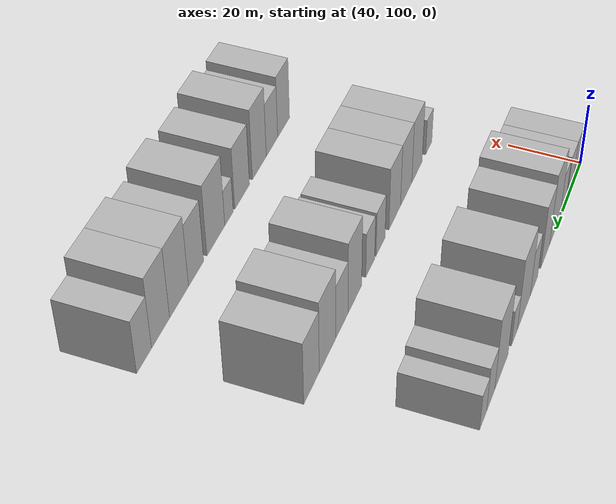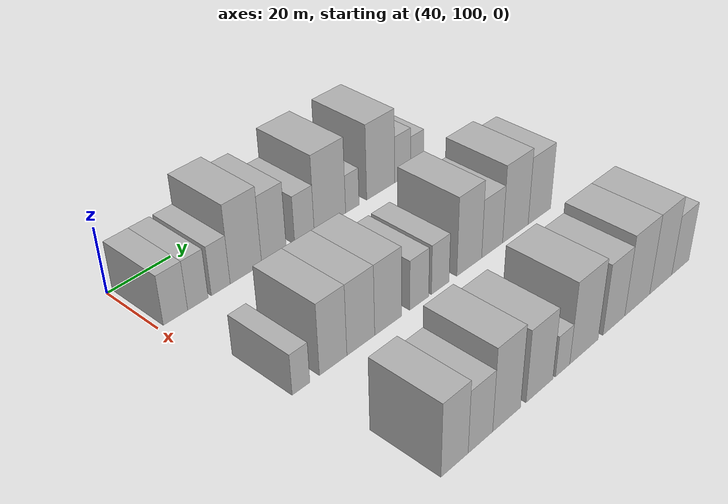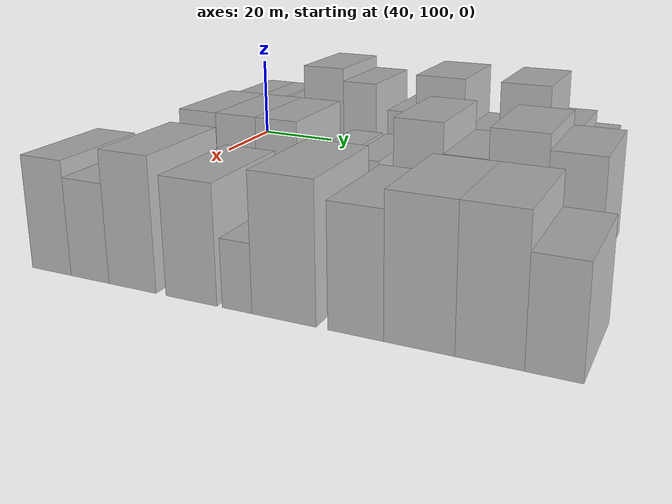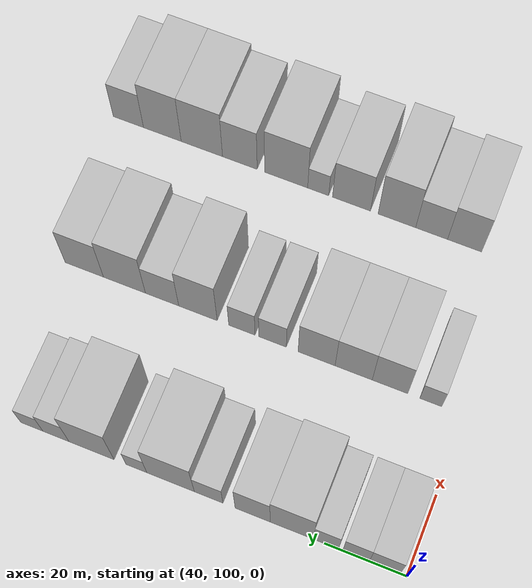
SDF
<sdf version="1.6">
 <world name="default">
  <model name="building_54">
   <static>1</static>
   <pose>50.0000 105.3752 0 0.000000 0.000000 0.000000</pose>
   <link name="link">
    <pose>0 0 7.50 0 0 0</pose>
    <collision name="collision"><geometry><box><size>20.0000 7.4803 15.0000</size></box></geometry></collision>
    <visual name="visual">
     <cast_shadows>0</cast_shadows>
     <geometry><box><size>20.0000 7.4803 15.0000</size></box></geometry>
     <material>
      <script>
       <uri>model://HANNAS_wall/materials/scripts</uri>
       <uri>model://HANNAS_wall/materials/textures</uri>
       <name>vrc/HANNAS_wall</name>
      </script>
     </material>
    </visual>
   </link>
  </model>
  <model name="building_55">
   <static>1</static>
   <pose>50.0000 112.3379 0 0.000000 0.000000 0.000000</pose>
   <link name="link">
    <pose>0 0 7.50 0 0 0</pose>
    <collision name="collision"><geometry><box><size>20.0000 6.4452 15.0000</size></box></geometry></collision>
    <visual name="visual">
     <cast_shadows>0</cast_shadows>
     <geometry><box><size>20.0000 6.4452 15.0000</size></box></geometry>
     <material>
      <script>
       <uri>model://HANNAS_wall/materials/scripts</uri>
       <uri>model://HANNAS_wall/materials/textures</uri>
       <name>vrc/HANNAS_wall</name>
      </script>
     </material>
    </visual>
   </link>
  </model>
  <model name="building_56">
   <static>1</static>
   <pose>50.0000 119.6325 0 0.000000 0.000000 0.000000</pose>
   <link name="link">
    <pose>0 0 7.50 0 0 0</pose>
    <collision name="collision"><geometry><box><size>20.0000 6.1440 15.0000</size></box></geometry></collision>
    <visual name="visual">
     <cast_shadows>0</cast_shadows>
     <geometry><box><size>20.0000 6.1440 15.0000</size></box></geometry>
     <material>
      <script>
       <uri>model://HANNAS_wall/materials/scripts</uri>
       <uri>model://HANNAS_wall/materials/textures</uri>
       <name>vrc/HANNAS_wall</name>
      </script>
     </material>
    </visual>
   </link>
  </model>
  <model name="building_57">
   <static>1</static>
   <pose>50.0000 128.0010 0 0.000000 0.000000 0.000000</pose>
   <link name="link">
    <pose>0 0 12.00 0 0 0</pose>
    <collision name="collision"><geometry><box><size>20.0000 10.5930 24.0000</size></box></geometry></collision>
    <visual name="visual">
     <cast_shadows>0</cast_shadows>
     <geometry><box><size>20.0000 10.5930 24.0000</size></box></geometry>
     <material>
      <script>
       <uri>model://HANNAS_wall/materials/scripts</uri>
       <uri>model://HANNAS_wall/materials/textures</uri>
       <name>vrc/HANNAS_wall</name>
      </script>
     </material>
    </visual>
   </link>
  </model>
  <model name="building_58">
   <static>1</static>
   <pose>50.0000 137.6000 0 0.000000 0.000000 0.000000</pose>
   <link name="link">
    <pose>0 0 10.50 0 0 0</pose>
    <collision name="collision"><geometry><box><size>20.0000 8.6049 21.0000</size></box></geometry></collision>
    <visual name="visual">
     <cast_shadows>0</cast_shadows>
     <geometry><box><size>20.0000 8.6049 21.0000</size></box></geometry>
     <material>
      <script>
       <uri>model://HANNAS_wall/materials/scripts</uri>
       <uri>model://HANNAS_wall/materials/textures</uri>
       <name>vrc/HANNAS_wall</name>
      </script>
     </material>
    </visual>
   </link>
  </model>
  <model name="building_59">
   <static>1</static>
   <pose>50.0000 148.4644 0 0.000000 0.000000 0.000000</pose>
   <link name="link">
    <pose>0 0 7.50 0 0 0</pose>
    <collision name="collision"><geometry><box><size>20.0000 7.1239 15.0000</size></box></geometry></collision>
    <visual name="visual">
     <cast_shadows>0</cast_shadows>
     <geometry><box><size>20.0000 7.1239 15.0000</size></box></geometry>
     <material>
      <script>
       <uri>model://HANNAS_wall/materials/scripts</uri>
       <uri>model://HANNAS_wall/materials/textures</uri>
       <name>vrc/HANNAS_wall</name>
      </script>
     </material>
    </visual>
   </link>
  </model>
  <model name="building_60">
   <static>1</static>
   <pose>50.0000 157.9762 0 0.000000 0.000000 0.000000</pose>
   <link name="link">
    <pose>0 0 12.00 0 0 0</pose>
    <collision name="collision"><geometry><box><size>20.0000 11.8997 24.0000</size></box></geometry></collision>
    <visual name="visual">
     <cast_shadows>0</cast_shadows>
     <geometry><box><size>20.0000 11.8997 24.0000</size></box></geometry>
     <material>
      <script>
       <uri>model://HANNAS_wall/materials/scripts</uri>
       <uri>model://HANNAS_wall/materials/textures</uri>
       <name>vrc/HANNAS_wall</name>
      </script>
     </material>
    </visual>
   </link>
  </model>
  <model name="building_61">
   <static>1</static>
   <pose>50.0000 166.5646 0 0.000000 0.000000 0.000000</pose>
   <link name="link">
    <pose>0 0 6.00 0 0 0</pose>
    <collision name="collision"><geometry><box><size>20.0000 5.2772 12.0000</size></box></geometry></collision>
    <visual name="visual">
     <cast_shadows>0</cast_shadows>
     <geometry><box><size>20.0000 5.2772 12.0000</size></box></geometry>
     <material>
      <script>
       <uri>model://HANNAS_wall/materials/scripts</uri>
       <uri>model://HANNAS_wall/materials/textures</uri>
       <name>vrc/HANNAS_wall</name>
      </script>
     </material>
    </visual>
   </link>
  </model>
  <model name="building_62">
   <static>1</static>
   <pose>50.0000 177.9136 0 0.000000 0.000000 0.000000</pose>
   <link name="link">
    <pose>0 0 12.00 0 0 0</pose>
    <collision name="collision"><geometry><box><size>20.0000 11.4206 24.0000</size></box></geometry></collision>
    <visual name="visual">
     <cast_shadows>0</cast_shadows>
     <geometry><box><size>20.0000 11.4206 24.0000</size></box></geometry>
     <material>
      <script>
       <uri>model://HANNAS_wall/materials/scripts</uri>
       <uri>model://HANNAS_wall/materials/textures</uri>
       <name>vrc/HANNAS_wall</name>
      </script>
     </material>
    </visual>
   </link>
  </model>
  <model name="building_63">
   <static>1</static>
   <pose>50.0000 186.9711 0 0.000000 0.000000 0.000000</pose>
   <link name="link">
    <pose>0 0 7.50 0 0 0</pose>
    <collision name="collision"><geometry><box><size>20.0000 6.6943 15.0000</size></box></geometry></collision>
    <visual name="visual">
     <cast_shadows>0</cast_shadows>
     <geometry><box><size>20.0000 6.6943 15.0000</size></box></geometry>
     <material>
      <script>
       <uri>model://HANNAS_wall/materials/scripts</uri>
       <uri>model://HANNAS_wall/materials/textures</uri>
       <name>vrc/HANNAS_wall</name>
      </script>
     </material>
    </visual>
   </link>
  </model>
  <model name="building_64">
   <static>1</static>
   <pose>50.0000 193.1554 0 0.000000 0.000000 0.000000</pose>
   <link name="link">
    <pose>0 0 6.00 0 0 0</pose>
    <collision name="collision"><geometry><box><size>20.0000 5.6743 12.0000</size></box></geometry></collision>
    <visual name="visual">
     <cast_shadows>0</cast_shadows>
     <geometry><box><size>20.0000 5.6743 12.0000</size></box></geometry>
     <material>
      <script>
       <uri>model://HANNAS_wall/materials/scripts</uri>
       <uri>model://HANNAS_wall/materials/textures</uri>
       <name>vrc/HANNAS_wall</name>
      </script>
     </material>
    </visual>
   </link>
  </model>
  <model name="building_136">
   <static>1</static>
   <pose>90.0000 108.5738 0 0.000000 0.000000 0.000000</pose>
   <link name="link">
    <pose>0 0 6.00 0 0 0</pose>
    <collision name="collision"><geometry><box><size>20.0000 5.4952 12.0000</size></box></geometry></collision>
    <visual name="visual">
     <cast_shadows>0</cast_shadows>
     <geometry><box><size>20.0000 5.4952 12.0000</size></box></geometry>
     <material>
      <script>
       <uri>model://HANNAS_wall/materials/scripts</uri>
       <uri>model://HANNAS_wall/materials/textures</uri>
       <name>vrc/HANNAS_wall</name>
      </script>
     </material>
    </visual>
   </link>
  </model>
  <model name="building_137">
   <static>1</static>
   <pose>90.0000 118.7861 0 0.000000 0.000000 0.000000</pose>
   <link name="link">
    <pose>0 0 10.50 0 0 0</pose>
    <collision name="collision"><geometry><box><size>20.0000 8.9294 21.0000</size></box></geometry></collision>
    <visual name="visual">
     <cast_shadows>0</cast_shadows>
     <geometry><box><size>20.0000 8.9294 21.0000</size></box></geometry>
     <material>
      <script>
       <uri>model://HANNAS_wall/materials/scripts</uri>
       <uri>model://HANNAS_wall/materials/textures</uri>
       <name>vrc/HANNAS_wall</name>
      </script>
     </material>
    </visual>
   </link>
  </model>
  <model name="building_138">
   <static>1</static>
   <pose>90.0000 127.9511 0 0.000000 0.000000 0.000000</pose>
   <link name="link">
    <pose>0 0 10.50 0 0 0</pose>
    <collision name="collision"><geometry><box><size>20.0000 9.4006 21.0000</size></box></geometry></collision>
    <visual name="visual">
     <cast_shadows>0</cast_shadows>
     <geometry><box><size>20.0000 9.4006 21.0000</size></box></geometry>
     <material>
      <script>
       <uri>model://HANNAS_wall/materials/scripts</uri>
       <uri>model://HANNAS_wall/materials/textures</uri>
       <name>vrc/HANNAS_wall</name>
      </script>
     </material>
    </visual>
   </link>
  </model>
  <model name="building_139">
   <static>1</static>
   <pose>90.0000 137.3617 0 0.000000 0.000000 0.000000</pose>
   <link name="link">
    <pose>0 0 10.50 0 0 0</pose>
    <collision name="collision"><geometry><box><size>20.0000 9.4206 21.0000</size></box></geometry></collision>
    <visual name="visual">
     <cast_shadows>0</cast_shadows>
     <geometry><box><size>20.0000 9.4206 21.0000</size></box></geometry>
     <material>
      <script>
       <uri>model://HANNAS_wall/materials/scripts</uri>
       <uri>model://HANNAS_wall/materials/textures</uri>
       <name>vrc/HANNAS_wall</name>
      </script>
     </material>
    </visual>
   </link>
  </model>
  <model name="building_140">
   <static>1</static>
   <pose>90.0000 148.5877 0 0.000000 0.000000 0.000000</pose>
   <link name="link">
    <pose>0 0 7.50 0 0 0</pose>
    <collision name="collision"><geometry><box><size>20.0000 7.0313 15.0000</size></box></geometry></collision>
    <visual name="visual">
     <cast_shadows>0</cast_shadows>
     <geometry><box><size>20.0000 7.0313 15.0000</size></box></geometry>
     <material>
      <script>
       <uri>model://HANNAS_wall/materials/scripts</uri>
       <uri>model://HANNAS_wall/materials/textures</uri>
       <name>vrc/HANNAS_wall</name>
      </script>
     </material>
    </visual>
   </link>
  </model>
  <model name="building_141">
   <static>1</static>
   <pose>90.0000 156.4864 0 0.000000 0.000000 0.000000</pose>
   <link name="link">
    <pose>0 0 7.50 0 0 0</pose>
    <collision name="collision"><geometry><box><size>20.0000 6.7660 15.0000</size></box></geometry></collision>
    <visual name="visual">
     <cast_shadows>0</cast_shadows>
     <geometry><box><size>20.0000 6.7660 15.0000</size></box></geometry>
     <material>
      <script>
       <uri>model://HANNAS_wall/materials/scripts</uri>
       <uri>model://HANNAS_wall/materials/textures</uri>
       <name>vrc/HANNAS_wall</name>
      </script>
     </material>
    </visual>
   </link>
  </model>
  <model name="building_142">
   <static>1</static>
   <pose>90.0000 167.8605 0 0.000000 0.000000 0.000000</pose>
   <link name="link">
    <pose>0 0 12.00 0 0 0</pose>
    <collision name="collision"><geometry><box><size>20.0000 9.9822 24.0000</size></box></geometry></collision>
    <visual name="visual">
     <cast_shadows>0</cast_shadows>
     <geometry><box><size>20.0000 9.9822 24.0000</size></box></geometry>
     <material>
      <script>
       <uri>model://HANNAS_wall/materials/scripts</uri>
       <uri>model://HANNAS_wall/materials/textures</uri>
       <name>vrc/HANNAS_wall</name>
      </script>
     </material>
    </visual>
   </link>
  </model>
  <model name="building_143">
   <static>1</static>
   <pose>90.0000 177.2043 0 0.000000 0.000000 0.000000</pose>
   <link name="link">
    <pose>0 0 9.00 0 0 0</pose>
    <collision name="collision"><geometry><box><size>20.0000 8.7055 18.0000</size></box></geometry></collision>
    <visual name="visual">
     <cast_shadows>0</cast_shadows>
     <geometry><box><size>20.0000 8.7055 18.0000</size></box></geometry>
     <material>
      <script>
       <uri>model://HANNAS_wall/materials/scripts</uri>
       <uri>model://HANNAS_wall/materials/textures</uri>
       <name>vrc/HANNAS_wall</name>
      </script>
     </material>
    </visual>
   </link>
  </model>
  <model name="building_144">
   <static>1</static>
   <pose>90.0000 187.0935 0 0.000000 0.000000 0.000000</pose>
   <link name="link">
    <pose>0 0 12.00 0 0 0</pose>
    <collision name="collision"><geometry><box><size>20.0000 11.0729 24.0000</size></box></geometry></collision>
    <visual name="visual">
     <cast_shadows>0</cast_shadows>
     <geometry><box><size>20.0000 11.0729 24.0000</size></box></geometry>
     <material>
      <script>
       <uri>model://HANNAS_wall/materials/scripts</uri>
       <uri>model://HANNAS_wall/materials/textures</uri>
       <name>vrc/HANNAS_wall</name>
      </script>
     </material>
    </visual>
   </link>
  </model>
  <model name="building_145">
   <static>1</static>
   <pose>90.0000 197.6979 0 0.000000 0.000000 0.000000</pose>
   <link name="link">
    <pose>0 0 10.50 0 0 0</pose>
    <collision name="collision"><geometry><box><size>20.0000 10.1359 21.0000</size></box></geometry></collision>
    <visual name="visual">
     <cast_shadows>0</cast_shadows>
     <geometry><box><size>20.0000 10.1359 21.0000</size></box></geometry>
     <material>
      <script>
       <uri>model://HANNAS_wall/materials/scripts</uri>
       <uri>model://HANNAS_wall/materials/textures</uri>
       <name>vrc/HANNAS_wall</name>
      </script>
     </material>
    </visual>
   </link>
  </model>
  <model name="building_221">
   <static>1</static>
   <pose>130.0000 114.1256 0 0.000000 0.000000 0.000000</pose>
   <link name="link">
    <pose>0 0 10.50 0 0 0</pose>
    <collision name="collision"><geometry><box><size>20.0000 8.7999 21.0000</size></box></geometry></collision>
    <visual name="visual">
     <cast_shadows>0</cast_shadows>
     <geometry><box><size>20.0000 8.7999 21.0000</size></box></geometry>
     <material>
      <script>
       <uri>model://HANNAS_wall/materials/scripts</uri>
       <uri>model://HANNAS_wall/materials/textures</uri>
       <name>vrc/HANNAS_wall</name>
      </script>
     </material>
    </visual>
   </link>
  </model>
  <model name="building_222">
   <static>1</static>
   <pose>130.0000 122.6610 0 0.000000 0.000000 0.000000</pose>
   <link name="link">
    <pose>0 0 9.00 0 0 0</pose>
    <collision name="collision"><geometry><box><size>20.0000 8.2710 18.0000</size></box></geometry></collision>
    <visual name="visual">
     <cast_shadows>0</cast_shadows>
     <geometry><box><size>20.0000 8.2710 18.0000</size></box></geometry>
     <material>
      <script>
       <uri>model://HANNAS_wall/materials/scripts</uri>
       <uri>model://HANNAS_wall/materials/textures</uri>
       <name>vrc/HANNAS_wall</name>
      </script>
     </material>
    </visual>
   </link>
  </model>
  <model name="building_223">
   <static>1</static>
   <pose>130.0000 131.7025 0 0.000000 0.000000 0.000000</pose>
   <link name="link">
    <pose>0 0 12.00 0 0 0</pose>
    <collision name="collision"><geometry><box><size>20.0000 9.8120 24.0000</size></box></geometry></collision>
    <visual name="visual">
     <cast_shadows>0</cast_shadows>
     <geometry><box><size>20.0000 9.8120 24.0000</size></box></geometry>
     <material>
      <script>
       <uri>model://HANNAS_wall/materials/scripts</uri>
       <uri>model://HANNAS_wall/materials/textures</uri>
       <name>vrc/HANNAS_wall</name>
      </script>
     </material>
    </visual>
   </link>
  </model>
  <model name="building_224">
   <static>1</static>
   <pose>130.0000 143.6136 0 0.000000 0.000000 0.000000</pose>
   <link name="link">
    <pose>0 0 10.50 0 0 0</pose>
    <collision name="collision"><geometry><box><size>20.0000 10.0101 21.0000</size></box></geometry></collision>
    <visual name="visual">
     <cast_shadows>0</cast_shadows>
     <geometry><box><size>20.0000 10.0101 21.0000</size></box></geometry>
     <material>
      <script>
       <uri>model://HANNAS_wall/materials/scripts</uri>
       <uri>model://HANNAS_wall/materials/textures</uri>
       <name>vrc/HANNAS_wall</name>
      </script>
     </material>
    </visual>
   </link>
  </model>
  <model name="building_225">
   <static>1</static>
   <pose>130.0000 152.3978 0 0.000000 0.000000 0.000000</pose>
   <link name="link">
    <pose>0 0 6.00 0 0 0</pose>
    <collision name="collision"><geometry><box><size>20.0000 5.5584 12.0000</size></box></geometry></collision>
    <visual name="visual">
     <cast_shadows>0</cast_shadows>
     <geometry><box><size>20.0000 5.5584 12.0000</size></box></geometry>
     <material>
      <script>
       <uri>model://HANNAS_wall/materials/scripts</uri>
       <uri>model://HANNAS_wall/materials/textures</uri>
       <name>vrc/HANNAS_wall</name>
      </script>
     </material>
    </visual>
   </link>
  </model>
  <model name="building_226">
   <static>1</static>
   <pose>130.0000 160.9051 0 0.000000 0.000000 0.000000</pose>
   <link name="link">
    <pose>0 0 12.00 0 0 0</pose>
    <collision name="collision"><geometry><box><size>20.0000 11.4561 24.0000</size></box></geometry></collision>
    <visual name="visual">
     <cast_shadows>0</cast_shadows>
     <geometry><box><size>20.0000 11.4561 24.0000</size></box></geometry>
     <material>
      <script>
       <uri>model://HANNAS_wall/materials/scripts</uri>
       <uri>model://HANNAS_wall/materials/textures</uri>
       <name>vrc/HANNAS_wall</name>
      </script>
     </material>
    </visual>
   </link>
  </model>
  <model name="building_227">
   <static>1</static>
   <pose>130.0000 173.2812 0 0.000000 0.000000 0.000000</pose>
   <link name="link">
    <pose>0 0 10.50 0 0 0</pose>
    <collision name="collision"><geometry><box><size>20.0000 9.2960 21.0000</size></box></geometry></collision>
    <visual name="visual">
     <cast_shadows>0</cast_shadows>
     <geometry><box><size>20.0000 9.2960 21.0000</size></box></geometry>
     <material>
      <script>
       <uri>model://HANNAS_wall/materials/scripts</uri>
       <uri>model://HANNAS_wall/materials/textures</uri>
       <name>vrc/HANNAS_wall</name>
      </script>
     </material>
    </visual>
   </link>
  </model>
  <model name="building_228">
   <static>1</static>
   <pose>130.0000 183.5183 0 0.000000 0.000000 0.000000</pose>
   <link name="link">
    <pose>0 0 12.00 0 0 0</pose>
    <collision name="collision"><geometry><box><size>20.0000 11.1782 24.0000</size></box></geometry></collision>
    <visual name="visual">
     <cast_shadows>0</cast_shadows>
     <geometry><box><size>20.0000 11.1782 24.0000</size></box></geometry>
     <material>
      <script>
       <uri>model://HANNAS_wall/materials/scripts</uri>
       <uri>model://HANNAS_wall/materials/textures</uri>
       <name>vrc/HANNAS_wall</name>
      </script>
     </material>
    </visual>
   </link>
  </model>
  <model name="building_229">
   <static>1</static>
   <pose>130.0000 194.2418 0 0.000000 0.000000 0.000000</pose>
   <link name="link">
    <pose>0 0 12.00 0 0 0</pose>
    <collision name="collision"><geometry><box><size>20.0000 10.2689 24.0000</size></box></geometry></collision>
    <visual name="visual">
     <cast_shadows>0</cast_shadows>
     <geometry><box><size>20.0000 10.2689 24.0000</size></box></geometry>
     <material>
      <script>
       <uri>model://HANNAS_wall/materials/scripts</uri>
       <uri>model://HANNAS_wall/materials/textures</uri>
       <name>vrc/HANNAS_wall</name>
      </script>
     </material>
    </visual>
   </link>
  </model>
  <model name="building_230">
   <static>1</static>
   <pose>130.0000 203.5151 0 0.000000 0.000000 0.000000</pose>
   <link name="link">
    <pose>0 0 9.00 0 0 0</pose>
    <collision name="collision"><geometry><box><size>20.0000 8.2777 18.0000</size></box></geometry></collision>
    <visual name="visual">
     <cast_shadows>0</cast_shadows>
     <geometry><box><size>20.0000 8.2777 18.0000</size></box></geometry>
     <material>
      <script>
       <uri>model://HANNAS_wall/materials/scripts</uri>
       <uri>model://HANNAS_wall/materials/textures</uri>
       <name>vrc/HANNAS_wall</name>
      </script>
     </material>
    </visual>
   </link>
  </model>
 </world>
</sdf>
